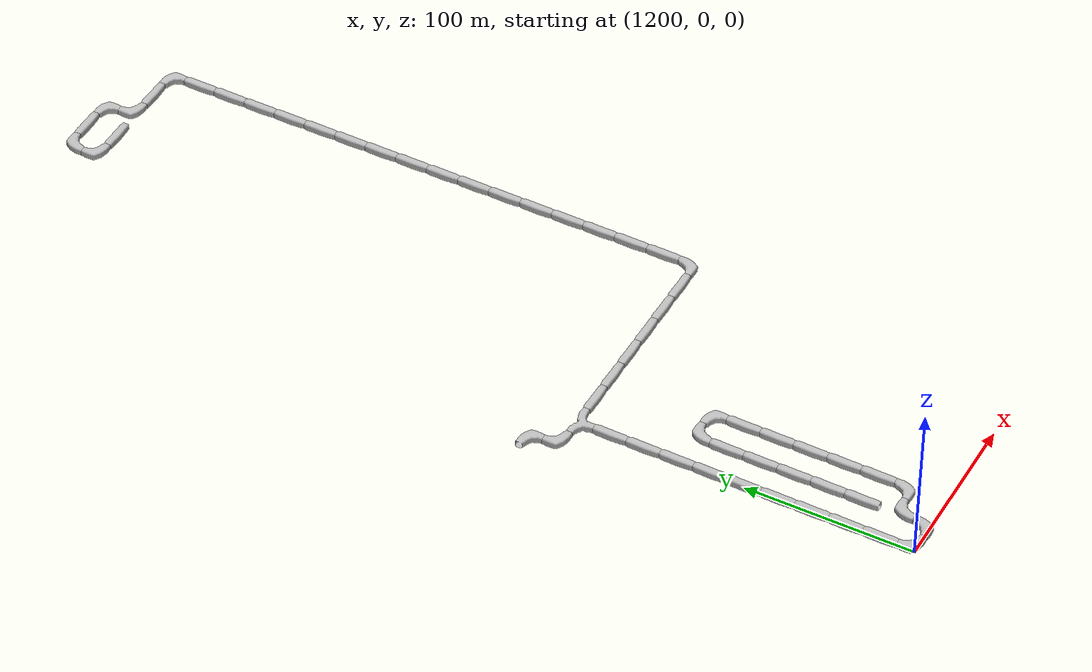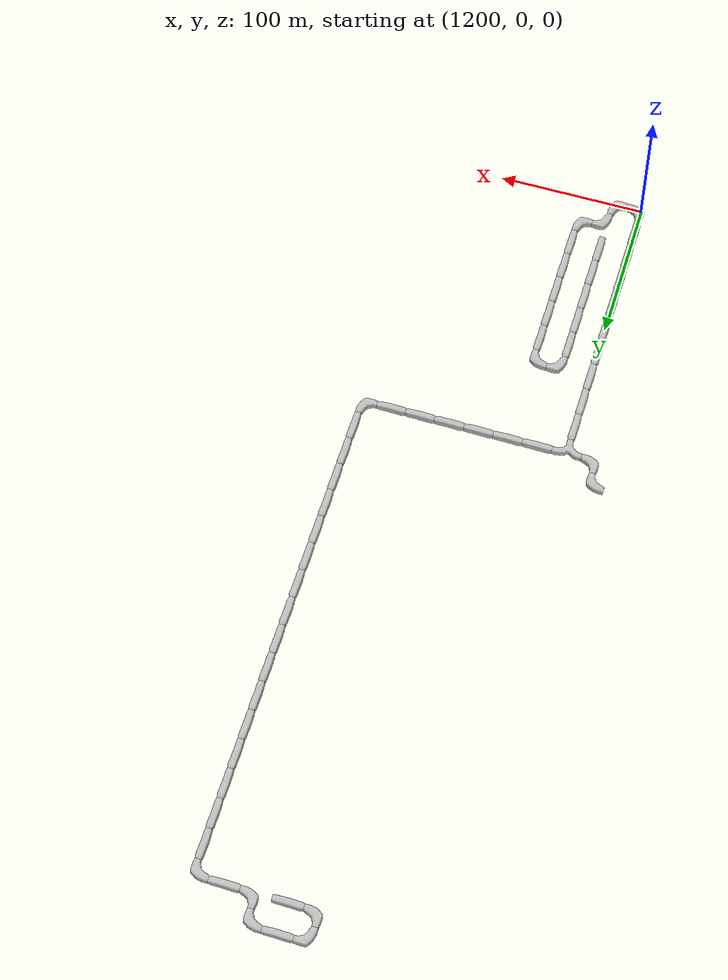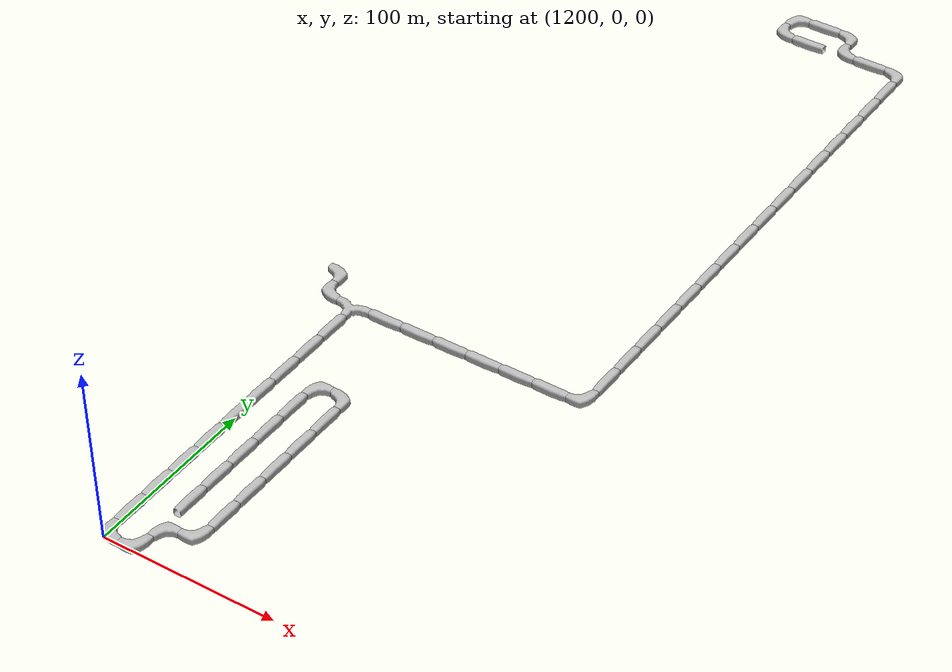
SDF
<sdf version="1.6">
 <world name="cave_32000_0">
  <include>
   <static>true</static>
   <name>cave_59_11</name>
   <pose>1180 220 0 0 0 3.141592653589793</pose>
   <uri>model://cave_L_20m</uri>
  </include>
  <include>
   <static>true</static>
   <name>cave_59_10</name>
   <pose>1180 200 0 0 0 0.0</pose>
   <uri>model://cave_L_20m</uri>
  </include>
  <include>
   <static>true</static>
   <name>cave_60_10</name>
   <pose>1200 200 0 0 0 3.141592653589793</pose>
   <uri>model://cave_3way_20m</uri>
  </include>
  <include>
   <static>true</static>
   <name>cave_61_10</name>
   <pose>1220 200 0 0 0 1.5707963267948966</pose>
   <uri>model://cave_straight_20m</uri>
  </include>
  <include>
   <static>true</static>
   <name>cave_62_10</name>
   <pose>1240 200 0 0 0 1.5707963267948966</pose>
   <uri>model://cave_straight_20m</uri>
  </include>
  <include>
   <static>true</static>
   <name>cave_63_10</name>
   <pose>1260 200 0 0 0 1.5707963267948966</pose>
   <uri>model://cave_straight_20m</uri>
  </include>
  <include>
   <static>true</static>
   <name>cave_64_10</name>
   <pose>1280 200 0 0 0 1.5707963267948966</pose>
   <uri>model://cave_straight_20m</uri>
  </include>
  <include>
   <static>true</static>
   <name>cave_65_10</name>
   <pose>1300 200 0 0 0 1.5707963267948966</pose>
   <uri>model://cave_straight_20m</uri>
  </include>
  <include>
   <static>true</static>
   <name>cave_66_10</name>
   <pose>1320 200 0 0 0 1.5707963267948966</pose>
   <uri>model://cave_straight_20m</uri>
  </include>
  <include>
   <static>true</static>
   <name>cave_67_10</name>
   <pose>1340 200 0 0 0 1.5707963267948966</pose>
   <uri>model://cave_L_20m</uri>
  </include>
  <include>
   <static>true</static>
   <name>cave_67_11</name>
   <pose>1340 220 0 0 0 0.0</pose>
   <uri>model://cave_straight_20m</uri>
  </include>
  <include>
   <static>true</static>
   <name>cave_67_12</name>
   <pose>1340 240 0 0 0 0.0</pose>
   <uri>model://cave_straight_20m</uri>
  </include>
  <include>
   <static>true</static>
   <name>cave_67_13</name>
   <pose>1340 260 0 0 0 0.0</pose>
   <uri>model://cave_straight_20m</uri>
  </include>
  <include>
   <static>true</static>
   <name>cave_67_14</name>
   <pose>1340 280 0 0 0 0.0</pose>
   <uri>model://cave_straight_20m</uri>
  </include>
  <include>
   <static>true</static>
   <name>cave_67_15</name>
   <pose>1340 300 0 0 0 0.0</pose>
   <uri>model://cave_straight_20m</uri>
  </include>
  <include>
   <static>true</static>
   <name>cave_67_16</name>
   <pose>1340 320 0 0 0 0.0</pose>
   <uri>model://cave_straight_20m</uri>
  </include>
  <include>
   <static>true</static>
   <name>cave_67_17</name>
   <pose>1340 340 0 0 0 0.0</pose>
   <uri>model://cave_straight_20m</uri>
  </include>
  <include>
   <static>true</static>
   <name>cave_67_18</name>
   <pose>1340 360 0 0 0 0.0</pose>
   <uri>model://cave_straight_20m</uri>
  </include>
  <include>
   <static>true</static>
   <name>cave_67_19</name>
   <pose>1340 380 0 0 0 0.0</pose>
   <uri>model://cave_straight_20m</uri>
  </include>
  <include>
   <static>true</static>
   <name>cave_67_20</name>
   <pose>1340 400 0 0 0 0.0</pose>
   <uri>model://cave_straight_20m</uri>
  </include>
  <include>
   <static>true</static>
   <name>cave_67_21</name>
   <pose>1340 420 0 0 0 0.0</pose>
   <uri>model://cave_straight_20m</uri>
  </include>
  <include>
   <static>true</static>
   <name>cave_67_22</name>
   <pose>1340 440 0 0 0 0.0</pose>
   <uri>model://cave_straight_20m</uri>
  </include>
  <include>
   <static>true</static>
   <name>cave_67_23</name>
   <pose>1340 460 0 0 0 0.0</pose>
   <uri>model://cave_straight_20m</uri>
  </include>
  <include>
   <static>true</static>
   <name>cave_67_24</name>
   <pose>1340 480 0 0 0 0.0</pose>
   <uri>model://cave_straight_20m</uri>
  </include>
  <include>
   <static>true</static>
   <name>cave_67_25</name>
   <pose>1340 500 0 0 0 0.0</pose>
   <uri>model://cave_straight_20m</uri>
  </include>
  <include>
   <static>true</static>
   <name>cave_67_26</name>
   <pose>1340 520 0 0 0 0.0</pose>
   <uri>model://cave_straight_20m</uri>
  </include>
  <include>
   <static>true</static>
   <name>cave_67_27</name>
   <pose>1340 540 0 0 0 3.141592653589793</pose>
   <uri>model://cave_L_20m</uri>
  </include>
  <include>
   <static>true</static>
   <name>cave_66_27</name>
   <pose>1320 540 0 0 0 1.5707963267948966</pose>
   <uri>model://cave_straight_20m</uri>
  </include>
  <include>
   <static>true</static>
   <name>cave_65_27</name>
   <pose>1300 540 0 0 0 0.0</pose>
   <uri>model://cave_L_20m</uri>
  </include>
  <include>
   <static>true</static>
   <name>cave_65_28</name>
   <pose>1300 560 0 0 0 3.141592653589793</pose>
   <uri>model://cave_L_20m</uri>
  </include>
  <include>
   <static>true</static>
   <name>cave_64_28</name>
   <pose>1280 560 0 0 0 1.5707963267948966</pose>
   <uri>model://cave_straight_20m</uri>
  </include>
  <include>
   <static>true</static>
   <name>cave_63_28</name>
   <pose>1260 560 0 0 0 -1.5707963267948966</pose>
   <uri>model://cave_L_20m</uri>
  </include>
  <include>
   <static>true</static>
   <name>cave_63_27</name>
   <pose>1260 540 0 0 0 0.0</pose>
   <uri>model://cave_L_20m</uri>
  </include>
  <include>
   <static>true</static>
   <name>cave_64_27</name>
   <pose>1280 540 0 0 0 1.5707963267948966</pose>
   <uri>model://cave_straight_20m</uri>
  </include>
  <include>
   <static>true</static>
   <name>cave_60_9</name>
   <pose>1200 180 0 0 0 0.0</pose>
   <uri>model://cave_straight_20m</uri>
  </include>
  <include>
   <static>true</static>
   <name>cave_60_8</name>
   <pose>1200 160 0 0 0 0.0</pose>
   <uri>model://cave_straight_20m</uri>
  </include>
  <include>
   <static>true</static>
   <name>cave_60_7</name>
   <pose>1200 140 0 0 0 0.0</pose>
   <uri>model://cave_straight_20m</uri>
  </include>
  <include>
   <static>true</static>
   <name>cave_60_6</name>
   <pose>1200 120 0 0 0 0.0</pose>
   <uri>model://cave_straight_20m</uri>
  </include>
  <include>
   <static>true</static>
   <name>cave_60_5</name>
   <pose>1200 100 0 0 0 0.0</pose>
   <uri>model://cave_straight_20m</uri>
  </include>
  <include>
   <static>true</static>
   <name>cave_60_4</name>
   <pose>1200 80 0 0 0 0.0</pose>
   <uri>model://cave_straight_20m</uri>
  </include>
  <include>
   <static>true</static>
   <name>cave_60_3</name>
   <pose>1200 60 0 0 0 0.0</pose>
   <uri>model://cave_straight_20m</uri>
  </include>
  <include>
   <static>true</static>
   <name>cave_60_2</name>
   <pose>1200 40 0 0 0 0.0</pose>
   <uri>model://cave_straight_20m</uri>
  </include>
  <include>
   <static>true</static>
   <name>cave_60_1</name>
   <pose>1200 20 0 0 0 0.0</pose>
   <uri>model://cave_straight_20m</uri>
  </include>
  <include>
   <static>true</static>
   <name>cave_60_0</name>
   <pose>1200 0 0 0 0 0.0</pose>
   <uri>model://cave_L_20m</uri>
  </include>
  <include>
   <static>true</static>
   <name>cave_61_0</name>
   <pose>1220 0 0 0 0 1.5707963267948966</pose>
   <uri>model://cave_L_20m</uri>
  </include>
  <include>
   <static>true</static>
   <name>cave_61_1</name>
   <pose>1220 20 0 0 0 -1.5707963267948966</pose>
   <uri>model://cave_L_20m</uri>
  </include>
  <include>
   <static>true</static>
   <name>cave_62_1</name>
   <pose>1240 20 0 0 0 1.5707963267948966</pose>
   <uri>model://cave_L_20m</uri>
  </include>
  <include>
   <static>true</static>
   <name>cave_62_2</name>
   <pose>1240 40 0 0 0 0.0</pose>
   <uri>model://cave_straight_20m</uri>
  </include>
  <include>
   <static>true</static>
   <name>cave_62_3</name>
   <pose>1240 60 0 0 0 0.0</pose>
   <uri>model://cave_straight_20m</uri>
  </include>
  <include>
   <static>true</static>
   <name>cave_62_4</name>
   <pose>1240 80 0 0 0 0.0</pose>
   <uri>model://cave_straight_20m</uri>
  </include>
  <include>
   <static>true</static>
   <name>cave_62_5</name>
   <pose>1240 100 0 0 0 0.0</pose>
   <uri>model://cave_straight_20m</uri>
  </include>
  <include>
   <static>true</static>
   <name>cave_62_6</name>
   <pose>1240 120 0 0 0 0.0</pose>
   <uri>model://cave_straight_20m</uri>
  </include>
  <include>
   <static>true</static>
   <name>cave_62_7</name>
   <pose>1240 140 0 0 0 3.141592653589793</pose>
   <uri>model://cave_L_20m</uri>
  </include>
  <include>
   <static>true</static>
   <name>cave_61_7</name>
   <pose>1220 140 0 0 0 -1.5707963267948966</pose>
   <uri>model://cave_L_20m</uri>
  </include>
  <include>
   <static>true</static>
   <name>cave_61_6</name>
   <pose>1220 120 0 0 0 0.0</pose>
   <uri>model://cave_straight_20m</uri>
  </include>
  <include>
   <static>true</static>
   <name>cave_61_5</name>
   <pose>1220 100 0 0 0 0.0</pose>
   <uri>model://cave_straight_20m</uri>
  </include>
  <include>
   <static>true</static>
   <name>cave_61_4</name>
   <pose>1220 80 0 0 0 0.0</pose>
   <uri>model://cave_straight_20m</uri>
  </include>
  <include>
   <static>true</static>
   <name>cave_61_3</name>
   <pose>1220 60 0 0 0 0.0</pose>
   <uri>model://cave_straight_20m</uri>
  </include>
  <include>
   <static>true</static>
   <name>cave_61_2</name>
   <pose>1220 40 0 0 0 0.0</pose>
   <uri>model://cave_straight_20m</uri>
  </include>
 </world>
</sdf>
